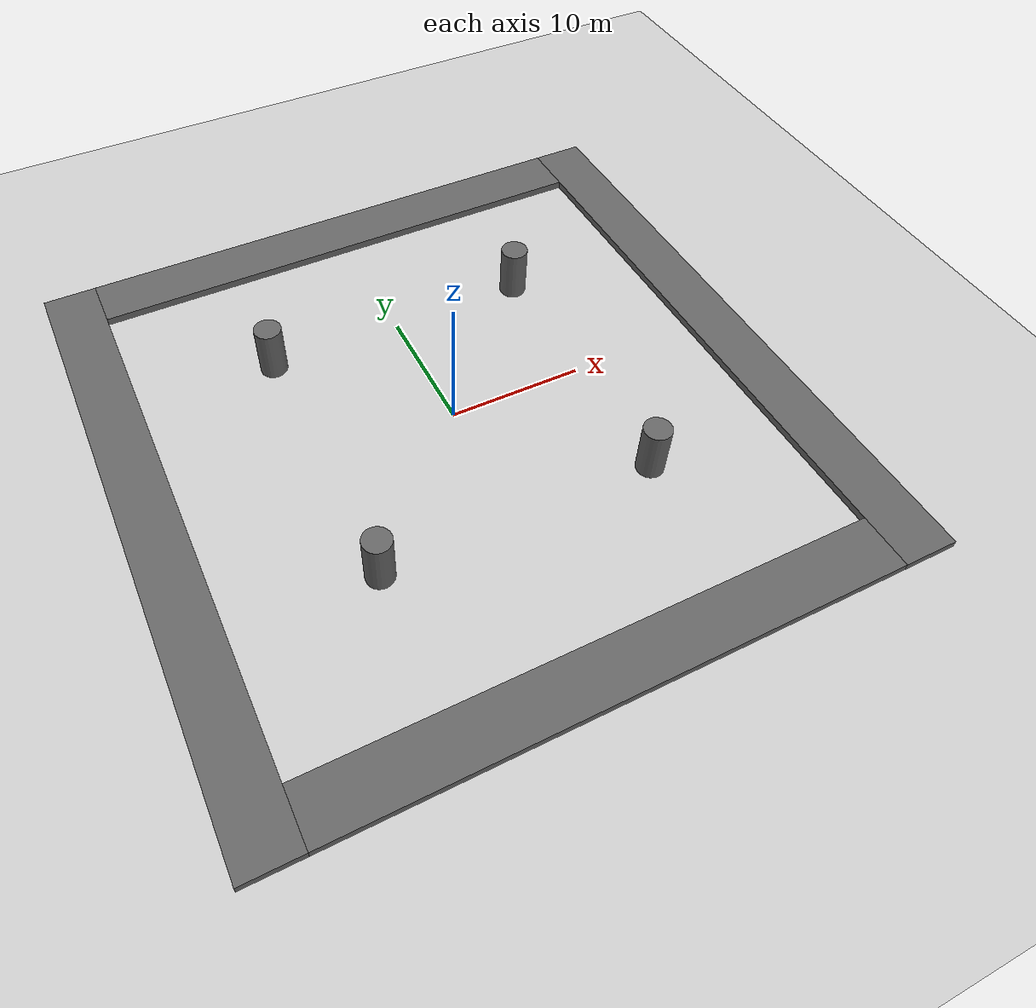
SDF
<sdf version="1.6">
 <world name="default">
  <light name="sun" type="directional">
   <pose>0 0 10 0 -0 0</pose>
   <diffuse>0.8 0.8 0.8 1</diffuse>
   <specular>0.2 0.2 0.2 1</specular>
   <attenuation>
    <range>1000</range>
    <constant>0.9</constant>
    <linear>0.01</linear>
    <quadratic>0.001</quadratic>
   </attenuation>
   <direction>-0.5 0.1 -0.9</direction>
  </light>
  <model name="ground_plane">
   <static>1</static>
   <link name="link">
    <collision name="collision">
     <geometry><plane><normal>0 0 1</normal><size>100 100</size></plane></geometry>
     <surface>
      <contact><collide_bitmask>65535</collide_bitmask></contact>
      <friction><ode><mu>100</mu><mu2>50</mu2></ode></friction>
     </surface>
    </collision>
    <visual name="visual">
     <cast_shadows>0</cast_shadows>
     <geometry><plane><normal>0 0 1</normal><size>100 100</size></plane></geometry>
     <material>
      <script><uri>file://media/materials/scripts/gazebo.material</uri><name>Gazebo/Grey</name></script>
     </material>
    </visual>
   </link>
  </model>
  <gravity>0 0 -9.8</gravity>
  <magnetic_field>6e-06 2.3e-05 -4.2e-05</magnetic_field>
  <atmosphere type="adiabatic"/>
  <physics name="default_physics" default="0" type="ode">
   <max_step_size>0.001</max_step_size>
   <real_time_factor>1</real_time_factor>
   <real_time_update_rate>1000</real_time_update_rate>
  </physics>
  <scene><ambient>0.4 0.4 0.4 1</ambient><background>0.7 0.7 0.7 1</background><shadows>1</shadows></scene>
  <spherical_coordinates>
   <surface_model>EARTH_WGS84</surface_model>
   <latitude_deg>0</latitude_deg>
   <longitude_deg>0</longitude_deg>
   <elevation>0</elevation>
   <heading_deg>0</heading_deg>
  </spherical_coordinates>
  <model name="limits">
   <link name="bottom_wall">
    <inertial>
     <mass>1</mass>
     <inertia>
      <ixx>0.166667</ixx>
      <ixy>0</ixy>
      <ixz>0</ixz>
      <iyy>0.166667</iyy>
      <iyz>0</iyz>
      <izz>0.166667</izz>
     </inertia>
    </inertial>
    <pose>22 0 0 0 -0 0</pose>
    <visual name="visual">
     <geometry><box><size>4 48 1</size></box></geometry>
     <material>
      <ambient>0.1 0.1 0.1 1</ambient>
      <diffuse>0.4 0.4 0.4 1</diffuse>
      <specular>0.01 0.01 0.01 1</specular>
      <emissive>0 0 0 1</emissive>
     </material>
    </visual>
    <collision name="collision">
     <geometry><box><size>4 48 1</size></box></geometry>
     <surface>
      <friction>
       <ode><mu>1</mu><mu2>1</mu2><fdir1>0 0 0</fdir1><slip1>0</slip1><slip2>0</slip2></ode>
       <torsional>
        <coefficient>1</coefficient>
        <patch_radius>0</patch_radius>
        <surface_radius>0</surface_radius>
        <use_patch_radius>1</use_patch_radius>
        <ode><slip>0</slip></ode>
       </torsional>
      </friction>
      <bounce><restitution_coefficient>0</restitution_coefficient><threshold>1e+06</threshold></bounce>
      <contact>
       <collide_without_contact>0</collide_without_contact>
       <collide_without_contact_bitmask>1</collide_without_contact_bitmask>
       <collide_bitmask>1</collide_bitmask>
       <ode>
        <soft_cfm>0</soft_cfm>
        <soft_erp>0.2</soft_erp>
        <kp>1e+13</kp>
        <kd>1</kd>
        <max_vel>0.01</max_vel>
        <min_depth>0</min_depth>
       </ode>
       <bullet>
        <split_impulse>1</split_impulse>
        <split_impulse_penetration_threshold>-0.01</split_impulse_penetration_threshold>
        <soft_cfm>0</soft_cfm>
        <soft_erp>0.2</soft_erp>
        <kp>1e+13</kp>
        <kd>1</kd>
       </bullet>
      </contact>
     </surface>
    </collision>
   </link>
   <link name="top_wall">
    <inertial>
     <mass>1</mass>
     <inertia>
      <ixx>0.166667</ixx>
      <ixy>0</ixy>
      <ixz>0</ixz>
      <iyy>0.166667</iyy>
      <iyz>0</iyz>
      <izz>0.166667</izz>
     </inertia>
    </inertial>
    <pose>-22 0 0 0 -0 0</pose>
    <visual name="visual">
     <geometry><box><size>4 48 1</size></box></geometry>
     <material>
      <ambient>0.1 0.1 0.1 1</ambient>
      <diffuse>0.4 0.4 0.4 1</diffuse>
      <specular>0.01 0.01 0.01 1</specular>
      <emissive>0 0 0 1</emissive>
     </material>
    </visual>
    <collision name="collision">
     <geometry><box><size>4 48 1</size></box></geometry>
     <surface>
      <friction>
       <ode><mu>1</mu><mu2>1</mu2><fdir1>0 0 0</fdir1><slip1>0</slip1><slip2>0</slip2></ode>
       <torsional>
        <coefficient>1</coefficient>
        <patch_radius>0</patch_radius>
        <surface_radius>0</surface_radius>
        <use_patch_radius>1</use_patch_radius>
        <ode><slip>0</slip></ode>
       </torsional>
      </friction>
      <bounce><restitution_coefficient>0</restitution_coefficient><threshold>1e+06</threshold></bounce>
      <contact>
       <collide_without_contact>0</collide_without_contact>
       <collide_without_contact_bitmask>1</collide_without_contact_bitmask>
       <collide_bitmask>1</collide_bitmask>
       <ode>
        <soft_cfm>0</soft_cfm>
        <soft_erp>0.2</soft_erp>
        <kp>1e+13</kp>
        <kd>1</kd>
        <max_vel>0.01</max_vel>
        <min_depth>0</min_depth>
       </ode>
       <bullet>
        <split_impulse>1</split_impulse>
        <split_impulse_penetration_threshold>-0.01</split_impulse_penetration_threshold>
        <soft_cfm>0</soft_cfm>
        <soft_erp>0.2</soft_erp>
        <kp>1e+13</kp>
        <kd>1</kd>
       </bullet>
      </contact>
     </surface>
    </collision>
   </link>
   <link name="left_wall">
    <inertial>
     <mass>1</mass>
     <inertia>
      <ixx>0.166667</ixx>
      <ixy>0</ixy>
      <ixz>0</ixz>
      <iyy>0.166667</iyy>
      <iyz>0</iyz>
      <izz>0.166667</izz>
     </inertia>
    </inertial>
    <pose>0 -22 0 0 -0 0</pose>
    <visual name="visual">
     <geometry><box><size>40 4 1</size></box></geometry>
     <material>
      <ambient>0.1 0.1 0.1 1</ambient>
      <diffuse>0.4 0.4 0.4 1</diffuse>
      <specular>0.01 0.01 0.01 1</specular>
      <emissive>0 0 0 1</emissive>
     </material>
    </visual>
    <collision name="collision">
     <geometry><box><size>40 4 1</size></box></geometry>
     <surface>
      <friction>
       <ode><mu>1</mu><mu2>1</mu2><fdir1>0 0 0</fdir1><slip1>0</slip1><slip2>0</slip2></ode>
       <torsional>
        <coefficient>1</coefficient>
        <patch_radius>0</patch_radius>
        <surface_radius>0</surface_radius>
        <use_patch_radius>1</use_patch_radius>
        <ode><slip>0</slip></ode>
       </torsional>
      </friction>
      <bounce><restitution_coefficient>0</restitution_coefficient><threshold>1e+06</threshold></bounce>
      <contact>
       <collide_without_contact>0</collide_without_contact>
       <collide_without_contact_bitmask>1</collide_without_contact_bitmask>
       <collide_bitmask>1</collide_bitmask>
       <ode>
        <soft_cfm>0</soft_cfm>
        <soft_erp>0.2</soft_erp>
        <kp>1e+13</kp>
        <kd>1</kd>
        <max_vel>0.01</max_vel>
        <min_depth>0</min_depth>
       </ode>
       <bullet>
        <split_impulse>1</split_impulse>
        <split_impulse_penetration_threshold>-0.01</split_impulse_penetration_threshold>
        <soft_cfm>0</soft_cfm>
        <soft_erp>0.2</soft_erp>
        <kp>1e+13</kp>
        <kd>1</kd>
       </bullet>
      </contact>
     </surface>
    </collision>
   </link>
   <link name="right_wall">
    <inertial>
     <mass>1</mass>
     <inertia>
      <ixx>0.166667</ixx>
      <ixy>0</ixy>
      <ixz>0</ixz>
      <iyy>0.166667</iyy>
      <iyz>0</iyz>
      <izz>0.166667</izz>
     </inertia>
    </inertial>
    <pose>0 22 0 0 -0 0</pose>
    <visual name="visual">
     <geometry><box><size>40 4 1</size></box></geometry>
     <material>
      <ambient>0.1 0.1 0.1 1</ambient>
      <diffuse>0.4 0.4 0.4 1</diffuse>
      <specular>0.01 0.01 0.01 1</specular>
      <emissive>0 0 0 1</emissive>
     </material>
    </visual>
    <collision name="collision">
     <geometry><box><size>40 4 1</size></box></geometry>
     <surface>
      <friction>
       <ode><mu>1</mu><mu2>1</mu2><fdir1>0 0 0</fdir1><slip1>0</slip1><slip2>0</slip2></ode>
       <torsional>
        <coefficient>1</coefficient>
        <patch_radius>0</patch_radius>
        <surface_radius>0</surface_radius>
        <use_patch_radius>1</use_patch_radius>
        <ode><slip>0</slip></ode>
       </torsional>
      </friction>
      <bounce><restitution_coefficient>0</restitution_coefficient><threshold>1e+06</threshold></bounce>
      <contact>
       <collide_without_contact>0</collide_without_contact>
       <collide_without_contact_bitmask>1</collide_without_contact_bitmask>
       <collide_bitmask>1</collide_bitmask>
       <ode>
        <soft_cfm>0</soft_cfm>
        <soft_erp>0.2</soft_erp>
        <kp>1e+13</kp>
        <kd>1</kd>
        <max_vel>0.01</max_vel>
        <min_depth>0</min_depth>
       </ode>
       <bullet>
        <split_impulse>1</split_impulse>
        <split_impulse_penetration_threshold>-0.01</split_impulse_penetration_threshold>
        <soft_cfm>0</soft_cfm>
        <soft_erp>0.2</soft_erp>
        <kp>1e+13</kp>
        <kd>1</kd>
       </bullet>
      </contact>
     </surface>
    </collision>
   </link>
   <static>1</static>
  </model>
  <model name="column_top_left">
   <link name="column_top_left">
    <inertial>
     <mass>1</mass>
     <inertia><ixx>0.145833</ixx><ixy>0</ixy><ixz>0</ixz><iyy>0.145833</iyy><iyz>0</iyz><izz>0.125</izz></inertia>
    </inertial>
    <visual name="visual">
     <geometry><cylinder><radius>1</radius><length>4</length></cylinder></geometry>
     <material>
      <ambient>0.1 0.1 0.1 1</ambient>
      <diffuse>0.4 0.4 0.4 1</diffuse>
      <specular>0.01 0.01 0.01 1</specular>
      <emissive>0 0 0 1</emissive>
     </material>
    </visual>
    <collision name="collision">
     <geometry><cylinder><radius>1</radius><length>4</length></cylinder></geometry>
     <surface>
      <friction>
       <ode><mu>1</mu><mu2>1</mu2><fdir1>0 0 0</fdir1><slip1>0</slip1><slip2>0</slip2></ode>
       <torsional>
        <coefficient>1</coefficient>
        <patch_radius>0</patch_radius>
        <surface_radius>0</surface_radius>
        <use_patch_radius>1</use_patch_radius>
        <ode><slip>0</slip></ode>
       </torsional>
      </friction>
      <bounce><restitution_coefficient>0</restitution_coefficient><threshold>1e+06</threshold></bounce>
      <contact>
       <collide_without_contact>0</collide_without_contact>
       <collide_without_contact_bitmask>1</collide_without_contact_bitmask>
       <collide_bitmask>1</collide_bitmask>
       <ode>
        <soft_cfm>0</soft_cfm>
        <soft_erp>0.2</soft_erp>
        <kp>1e+13</kp>
        <kd>1</kd>
        <max_vel>0.01</max_vel>
        <min_depth>0</min_depth>
       </ode>
       <bullet>
        <split_impulse>1</split_impulse>
        <split_impulse_penetration_threshold>-0.01</split_impulse_penetration_threshold>
        <soft_cfm>0</soft_cfm>
        <soft_erp>0.2</soft_erp>
        <kp>1e+13</kp>
        <kd>1</kd>
       </bullet>
      </contact>
     </surface>
    </collision>
   </link>
   <static>0</static>
   <pose>-10 -10 2 0 -0 0</pose>
  </model>
  <model name="column_top_right">
   <link name="column_top_right">
    <inertial>
     <mass>1</mass>
     <inertia><ixx>0.145833</ixx><ixy>0</ixy><ixz>0</ixz><iyy>0.145833</iyy><iyz>0</iyz><izz>0.125</izz></inertia>
    </inertial>
    <visual name="visual">
     <geometry><cylinder><radius>1</radius><length>4</length></cylinder></geometry>
     <material>
      <ambient>0.1 0.1 0.1 1</ambient>
      <diffuse>0.4 0.4 0.4 1</diffuse>
      <specular>0.01 0.01 0.01 1</specular>
      <emissive>0 0 0 1</emissive>
     </material>
    </visual>
    <collision name="collision">
     <geometry><cylinder><radius>1</radius><length>4</length></cylinder></geometry>
     <surface>
      <friction>
       <ode><mu>1</mu><mu2>1</mu2><fdir1>0 0 0</fdir1><slip1>0</slip1><slip2>0</slip2></ode>
       <torsional>
        <coefficient>1</coefficient>
        <patch_radius>0</patch_radius>
        <surface_radius>0</surface_radius>
        <use_patch_radius>1</use_patch_radius>
        <ode><slip>0</slip></ode>
       </torsional>
      </friction>
      <bounce><restitution_coefficient>0</restitution_coefficient><threshold>1e+06</threshold></bounce>
      <contact>
       <collide_without_contact>0</collide_without_contact>
       <collide_without_contact_bitmask>1</collide_without_contact_bitmask>
       <collide_bitmask>1</collide_bitmask>
       <ode>
        <soft_cfm>0</soft_cfm>
        <soft_erp>0.2</soft_erp>
        <kp>1e+13</kp>
        <kd>1</kd>
        <max_vel>0.01</max_vel>
        <min_depth>0</min_depth>
       </ode>
       <bullet>
        <split_impulse>1</split_impulse>
        <split_impulse_penetration_threshold>-0.01</split_impulse_penetration_threshold>
        <soft_cfm>0</soft_cfm>
        <soft_erp>0.2</soft_erp>
        <kp>1e+13</kp>
        <kd>1</kd>
       </bullet>
      </contact>
     </surface>
    </collision>
   </link>
   <static>0</static>
   <pose>-10 10 2 0 -0 0</pose>
  </model>
  <model name="column_bottom_left">
   <link name="column_bottom_left">
    <inertial>
     <mass>1</mass>
     <inertia><ixx>0.145833</ixx><ixy>0</ixy><ixz>0</ixz><iyy>0.145833</iyy><iyz>0</iyz><izz>0.125</izz></inertia>
    </inertial>
    <visual name="visual">
     <geometry><cylinder><radius>1</radius><length>4</length></cylinder></geometry>
     <material>
      <ambient>0.1 0.1 0.1 1</ambient>
      <diffuse>0.4 0.4 0.4 1</diffuse>
      <specular>0.01 0.01 0.01 1</specular>
      <emissive>0 0 0 1</emissive>
     </material>
    </visual>
    <collision name="collision">
     <geometry><cylinder><radius>1</radius><length>4</length></cylinder></geometry>
     <surface>
      <friction>
       <ode><mu>1</mu><mu2>1</mu2><fdir1>0 0 0</fdir1><slip1>0</slip1><slip2>0</slip2></ode>
       <torsional>
        <coefficient>1</coefficient>
        <patch_radius>0</patch_radius>
        <surface_radius>0</surface_radius>
        <use_patch_radius>1</use_patch_radius>
        <ode><slip>0</slip></ode>
       </torsional>
      </friction>
      <bounce><restitution_coefficient>0</restitution_coefficient><threshold>1e+06</threshold></bounce>
      <contact>
       <collide_without_contact>0</collide_without_contact>
       <collide_without_contact_bitmask>1</collide_without_contact_bitmask>
       <collide_bitmask>1</collide_bitmask>
       <ode>
        <soft_cfm>0</soft_cfm>
        <soft_erp>0.2</soft_erp>
        <kp>1e+13</kp>
        <kd>1</kd>
        <max_vel>0.01</max_vel>
        <min_depth>0</min_depth>
       </ode>
       <bullet>
        <split_impulse>1</split_impulse>
        <split_impulse_penetration_threshold>-0.01</split_impulse_penetration_threshold>
        <soft_cfm>0</soft_cfm>
        <soft_erp>0.2</soft_erp>
        <kp>1e+13</kp>
        <kd>1</kd>
       </bullet>
      </contact>
     </surface>
    </collision>
   </link>
   <static>0</static>
   <pose>10 -10 2 0 -0 0</pose>
  </model>
  <model name="column_bottom_right">
   <link name="column_bottom_right">
    <inertial>
     <mass>1</mass>
     <inertia><ixx>0.145833</ixx><ixy>0</ixy><ixz>0</ixz><iyy>0.145833</iyy><iyz>0</iyz><izz>0.125</izz></inertia>
    </inertial>
    <visual name="visual">
     <geometry><cylinder><radius>1</radius><length>4</length></cylinder></geometry>
     <material>
      <ambient>0.1 0.1 0.1 1</ambient>
      <diffuse>0.4 0.4 0.4 1</diffuse>
      <specular>0.01 0.01 0.01 1</specular>
      <emissive>0 0 0 1</emissive>
     </material>
    </visual>
    <collision name="collision">
     <geometry><cylinder><radius>1</radius><length>4</length></cylinder></geometry>
     <surface>
      <friction>
       <ode><mu>1</mu><mu2>1</mu2><fdir1>0 0 0</fdir1><slip1>0</slip1><slip2>0</slip2></ode>
       <torsional>
        <coefficient>1</coefficient>
        <patch_radius>0</patch_radius>
        <surface_radius>0</surface_radius>
        <use_patch_radius>1</use_patch_radius>
        <ode><slip>0</slip></ode>
       </torsional>
      </friction>
      <bounce><restitution_coefficient>0</restitution_coefficient><threshold>1e+06</threshold></bounce>
      <contact>
       <collide_without_contact>0</collide_without_contact>
       <collide_without_contact_bitmask>1</collide_without_contact_bitmask>
       <collide_bitmask>1</collide_bitmask>
       <ode>
        <soft_cfm>0</soft_cfm>
        <soft_erp>0.2</soft_erp>
        <kp>1e+13</kp>
        <kd>1</kd>
        <max_vel>0.01</max_vel>
        <min_depth>0</min_depth>
       </ode>
       <bullet>
        <split_impulse>1</split_impulse>
        <split_impulse_penetration_threshold>-0.01</split_impulse_penetration_threshold>
        <soft_cfm>0</soft_cfm>
        <soft_erp>0.2</soft_erp>
        <kp>1e+13</kp>
        <kd>1</kd>
       </bullet>
      </contact>
     </surface>
    </collision>
   </link>
   <static>1</static>
   <pose>10 10 2 0 -0 0</pose>
  </model>
 </world>
</sdf>
